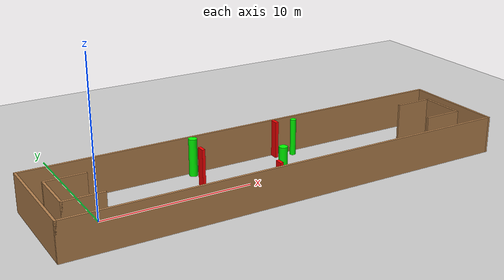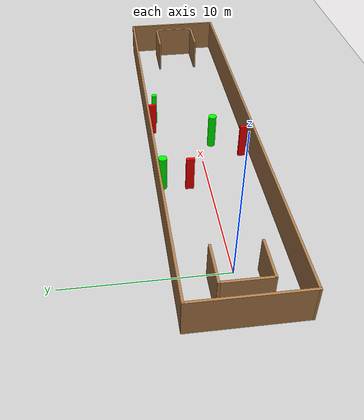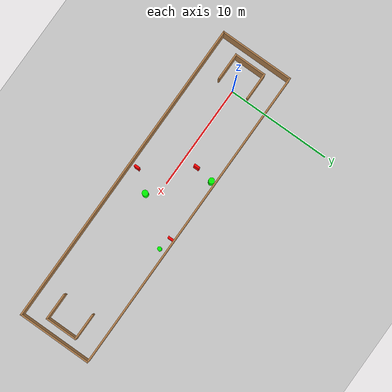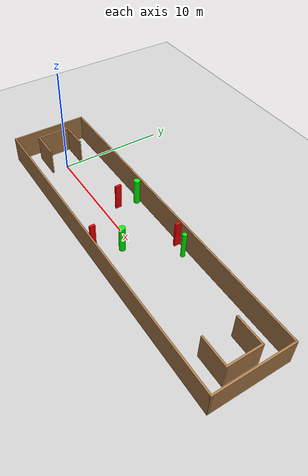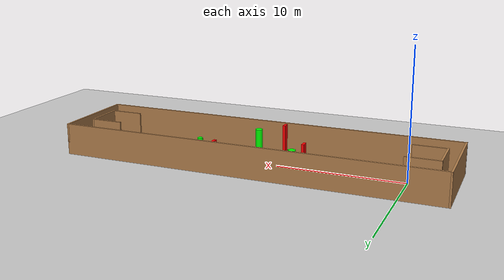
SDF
<sdf version="1.7">
 <world name="default">
  <light name="sun" type="directional">
   <pose>0 0 10 0 -0 0</pose>
   <diffuse>0.8 0.8 0.8 1</diffuse>
   <specular>0.2 0.2 0.2 1</specular>
   <attenuation>
    <range>1000</range>
    <constant>0.9</constant>
    <linear>0.01</linear>
    <quadratic>0.001</quadratic>
   </attenuation>
   <direction>-0.5 0.1 -0.9</direction>
   <spot><inner_angle>0</inner_angle><outer_angle>0</outer_angle><falloff>0</falloff></spot>
  </light>
  <model name="ground_plane">
   <static>1</static>
   <link name="link">
    <collision name="collision">
     <geometry><plane><normal>0 0 1</normal><size>100 100</size></plane></geometry>
     <surface>
      <contact><collide_bitmask>65535</collide_bitmask></contact>
      <friction><ode><mu>100</mu><mu2>50</mu2></ode></friction>
     </surface>
    </collision>
    <visual name="visual">
     <cast_shadows>0</cast_shadows>
     <geometry><plane><normal>0 0 1</normal><size>100 100</size></plane></geometry>
     <material>
      <script><uri>file://media/materials/scripts/gazebo.material</uri><name>Gazebo/Grey</name></script>
     </material>
    </visual>
   </link>
  </model>
  <gravity>0 0 -9.8</gravity>
  <magnetic_field>6e-06 2.3e-05 -4.2e-05</magnetic_field>
  <atmosphere type="adiabatic"/>
  <physics type="ode">
   <max_step_size>0.001</max_step_size>
   <real_time_factor>1</real_time_factor>
   <real_time_update_rate>1000</real_time_update_rate>
  </physics>
  <scene><ambient>0.4 0.4 0.4 1</ambient><background>0.7 0.7 0.7 1</background><shadows>1</shadows></scene>
  <spherical_coordinates>
   <surface_model>EARTH_WGS84</surface_model>
   <latitude_deg>0</latitude_deg>
   <longitude_deg>0</longitude_deg>
   <elevation>0</elevation>
   <heading_deg>0</heading_deg>
  </spherical_coordinates>
  <model name="my_base_walls">
   <link name="Wall_0">
    <collision name="Wall_0_Collision">
     <geometry><box><size>7.15 0.15 2.5</size></box></geometry>
     <pose>0 0 1.25 0 -0 0</pose>
    </collision>
    <visual name="Wall_0_Visual">
     <pose>0 0 1.25 0 -0 0</pose>
     <geometry><box><size>7.15 0.15 2.5</size></box></geometry>
     <material>
      <script><uri>file://media/materials/scripts/gazebo.material</uri><name>Gazebo/Wood</name></script>
      <ambient>1 1 1 1</ambient>
     </material>
     <meta><layer>0</layer></meta>
    </visual>
    <pose>-15 0 0 0 -0 1.5708</pose>
   </link>
   <link name="Wall_10">
    <collision name="Wall_10_Collision">
     <geometry><box><size>2.65 0.15 2.5</size></box></geometry>
     <pose>0 0 1.25 0 -0 0</pose>
    </collision>
    <visual name="Wall_10_Visual">
     <pose>0 0 1.25 0 -0 0</pose>
     <geometry><box><size>2.65 0.15 2.5</size></box></geometry>
     <material>
      <script><uri>file://media/materials/scripts/gazebo.material</uri><name>Gazebo/Wood</name></script>
      <ambient>1 1 1 1</ambient>
     </material>
     <meta><layer>0</layer></meta>
    </visual>
    <pose>-12.75 -1.5 0 0 -0 0</pose>
   </link>
   <link name="Wall_12">
    <collision name="Wall_12_Collision">
     <geometry><box><size>2.65 0.15 2.5</size></box></geometry>
     <pose>0 0 1.25 0 -0 0</pose>
    </collision>
    <visual name="Wall_12_Visual">
     <pose>0 0 1.25 0 -0 0</pose>
     <geometry><box><size>2.65 0.15 2.5</size></box></geometry>
     <material>
      <script><uri>file://media/materials/scripts/gazebo.material</uri><name>Gazebo/Wood</name></script>
      <ambient>1 1 1 1</ambient>
     </material>
     <meta><layer>0</layer></meta>
    </visual>
    <pose>-12.75 1.5 0 0 -0 0</pose>
   </link>
   <link name="Wall_14">
    <collision name="Wall_14_Collision">
     <geometry><box><size>3.15 0.15 2.5</size></box></geometry>
     <pose>0 0 1.25 0 -0 0</pose>
    </collision>
    <visual name="Wall_14_Visual">
     <pose>0 0 1.25 0 -0 0</pose>
     <geometry><box><size>3.15 0.15 2.5</size></box></geometry>
     <material>
      <script><uri>file://media/materials/scripts/gazebo.material</uri><name>Gazebo/Wood</name></script>
      <ambient>1 1 1 1</ambient>
     </material>
     <meta><layer>0</layer></meta>
    </visual>
    <pose>14 0 0 0 -0 -1.5708</pose>
   </link>
   <link name="Wall_15">
    <collision name="Wall_15_Collision">
     <geometry><box><size>2.65 0.15 2.5</size></box></geometry>
     <pose>0 0 1.25 0 -0 0</pose>
    </collision>
    <visual name="Wall_15_Visual">
     <pose>0 0 1.25 0 -0 0</pose>
     <geometry><box><size>2.65 0.15 2.5</size></box></geometry>
     <material>
      <script><uri>file://media/materials/scripts/gazebo.material</uri><name>Gazebo/Wood</name></script>
      <ambient>1 1 1 1</ambient>
     </material>
     <meta><layer>0</layer></meta>
    </visual>
    <pose>12.75 -1.5 0 0 -0 3.14159</pose>
   </link>
   <link name="Wall_17">
    <collision name="Wall_17_Collision">
     <geometry><box><size>2.65 0.15 2.5</size></box></geometry>
     <pose>0 0 1.25 0 -0 0</pose>
    </collision>
    <visual name="Wall_17_Visual">
     <pose>0 0 1.25 0 -0 0</pose>
     <geometry><box><size>2.65 0.15 2.5</size></box></geometry>
     <material>
      <script><uri>file://media/materials/scripts/gazebo.material</uri><name>Gazebo/Wood</name></script>
      <ambient>1 1 1 1</ambient>
     </material>
     <meta><layer>0</layer></meta>
    </visual>
    <pose>12.75 1.5 0 0 -0 3.14159</pose>
   </link>
   <link name="Wall_2">
    <collision name="Wall_2_Collision">
     <geometry><box><size>30.15 0.15 2.5</size></box></geometry>
     <pose>0 0 1.25 0 -0 0</pose>
    </collision>
    <visual name="Wall_2_Visual">
     <pose>0 0 1.25 0 -0 0</pose>
     <geometry><box><size>30.15 0.15 2.5</size></box></geometry>
     <material>
      <script><uri>file://media/materials/scripts/gazebo.material</uri><name>Gazebo/Wood</name></script>
      <ambient>1 1 1 1</ambient>
     </material>
     <meta><layer>0</layer></meta>
    </visual>
    <pose>-0 -3.5 0 0 -0 0</pose>
   </link>
   <link name="Wall_4">
    <collision name="Wall_4_Collision">
     <geometry><box><size>30.15 0.15 2.5</size></box></geometry>
     <pose>0 0 1.25 0 -0 0</pose>
    </collision>
    <visual name="Wall_4_Visual">
     <pose>0 0 1.25 0 -0 0</pose>
     <geometry><box><size>30.15 0.15 2.5</size></box></geometry>
     <material>
      <script><uri>file://media/materials/scripts/gazebo.material</uri><name>Gazebo/Wood</name></script>
      <ambient>1 1 1 1</ambient>
     </material>
     <meta><layer>0</layer></meta>
    </visual>
    <pose>-0 3.5 0 0 -0 0</pose>
   </link>
   <link name="Wall_6">
    <collision name="Wall_6_Collision">
     <geometry><box><size>7.15 0.15 2.5</size></box></geometry>
     <pose>0 0 1.25 0 -0 0</pose>
    </collision>
    <visual name="Wall_6_Visual">
     <pose>0 0 1.25 0 -0 0</pose>
     <geometry><box><size>7.15 0.15 2.5</size></box></geometry>
     <material>
      <script><uri>file://media/materials/scripts/gazebo.material</uri><name>Gazebo/Wood</name></script>
      <ambient>1 1 1 1</ambient>
     </material>
     <meta><layer>0</layer></meta>
    </visual>
    <pose>15 0 0 0 -0 -1.5708</pose>
   </link>
   <link name="Wall_9">
    <collision name="Wall_9_Collision">
     <geometry><box><size>3.15 0.15 2.5</size></box></geometry>
     <pose>0 0 1.25 0 -0 0</pose>
    </collision>
    <visual name="Wall_9_Visual">
     <pose>0 0 1.25 0 -0 0</pose>
     <geometry><box><size>3.15 0.15 2.5</size></box></geometry>
     <material>
      <script><uri>file://media/materials/scripts/gazebo.material</uri><name>Gazebo/Wood</name></script>
      <ambient>1 1 1 1</ambient>
     </material>
     <meta><layer>0</layer></meta>
    </visual>
    <pose>-14 0 0 0 -0 -1.5708</pose>
   </link>
   <static>1</static>
   <pose>11.5 0 0 0 -0 0</pose>
  </model>
  <model name="cylinder1">
   <static>1</static>
   <link name="link">
    <inertial>
     <mass>1</mass>
     <inertia><ixx>0.5</ixx><ixy>0</ixy><ixz>0</ixz><iyy>0.5</iyy><iyz>0</iyz><izz>1</izz></inertia>
    </inertial>
    <collision name="collision">
     <geometry><cylinder><radius>0.28046638212229735</radius><length>2.5</length></cylinder></geometry>
    </collision>
    <visual name="visual">
     <geometry><cylinder><radius>0.28046638212229735</radius><length>2.5</length></cylinder></geometry>
     <material>
      <ambient>0 1 0 1</ambient>
      <diffuse>0 1 0 1</diffuse>
      <specular>0.1 0.1 0.1 1</specular>
      <emissive>0 0 0 0</emissive>
     </material>
    </visual>
   </link>
   <pose>7.650367297171419 3.130589919116746 1.25 0 0 0</pose>
  </model>
  <model name="cylinder2">
   <static>1</static>
   <link name="link">
    <inertial>
     <mass>1</mass>
     <inertia><ixx>0.5</ixx><ixy>0</ixy><ixz>0</ixz><iyy>0.5</iyy><iyz>0</iyz><izz>1</izz></inertia>
    </inertial>
    <collision name="collision">
     <geometry><cylinder><radius>0.2795611335944125</radius><length>2.5</length></cylinder></geometry>
    </collision>
    <visual name="visual">
     <geometry><cylinder><radius>0.2795611335944125</radius><length>2.5</length></cylinder></geometry>
     <material>
      <ambient>0 1 0 1</ambient>
      <diffuse>0 1 0 1</diffuse>
      <specular>0.1 0.1 0.1 1</specular>
      <emissive>0 0 0 0</emissive>
     </material>
    </visual>
   </link>
   <pose>11.846278118406513 -0.9165812304703902 1.25 0 0 0</pose>
  </model>
  <model name="cylinder3">
   <static>1</static>
   <link name="link">
    <inertial>
     <mass>1</mass>
     <inertia><ixx>0.5</ixx><ixy>0</ixy><ixz>0</ixz><iyy>0.5</iyy><iyz>0</iyz><izz>1</izz></inertia>
    </inertial>
    <collision name="collision">
     <geometry><cylinder><radius>0.19528446278272846</radius><length>2.5</length></cylinder></geometry>
    </collision>
    <visual name="visual">
     <geometry><cylinder><radius>0.19528446278272846</radius><length>2.5</length></cylinder></geometry>
     <material>
      <ambient>0 1 0 1</ambient>
      <diffuse>0 1 0 1</diffuse>
      <specular>0.1 0.1 0.1 1</specular>
      <emissive>0 0 0 0</emissive>
     </material>
    </visual>
   </link>
   <pose>15.02096678763155 2.885499076180068 1.25 0 0 0</pose>
  </model>
  <model name="box1">
   <static>1</static>
   <link name="link">
    <inertial>
     <mass>1</mass>
     <inertia><ixx>0.083</ixx><ixy>0</ixy><ixz>0</ixz><iyy>0.083</iyy><iyz>0</iyz><izz>0.083</izz></inertia>
    </inertial>
    <collision name="collision">
     <geometry><box><size>0.21181712463042351 0.5441764796404168 2.5</size></box></geometry>
    </collision>
    <visual name="visual">
     <geometry><box><size>0.21181712463042351 0.5441764796404168 2.5</size></box></geometry>
     <material>
      <ambient>1 0 0 1</ambient>
      <diffuse>1 0 0 1</diffuse>
      <specular>0.1 0.1 0.1 1</specular>
      <emissive>0 0 0 0</emissive>
     </material>
    </visual>
    <sensor name="my_contact" type="contact">
     <contact><collision>box_collision</collision><topic>__default_topic__</topic></contact>
    </sensor>
   </link>
   <pose>13.760980936209513 3.1620358737053813 1.25 0 0 0</pose>
  </model>
  <model name="box2">
   <static>1</static>
   <link name="link">
    <inertial>
     <mass>1</mass>
     <inertia><ixx>0.083</ixx><ixy>0</ixy><ixz>0</ixz><iyy>0.083</iyy><iyz>0</iyz><izz>0.083</izz></inertia>
    </inertial>
    <collision name="collision">
     <geometry><box><size>0.20989599818036614 0.5491843482371743 2.5</size></box></geometry>
    </collision>
    <visual name="visual">
     <geometry><box><size>0.20989599818036614 0.5491843482371743 2.5</size></box></geometry>
     <material>
      <ambient>1 0 0 1</ambient>
      <diffuse>1 0 0 1</diffuse>
      <specular>0.1 0.1 0.1 1</specular>
      <emissive>0 0 0 0</emissive>
     </material>
    </visual>
    <sensor name="my_contact" type="contact">
     <contact><collision>box_collision</collision><topic>__default_topic__</topic></contact>
    </sensor>
   </link>
   <pose>7.376537436711345 1.3675508180063076 1.25 0 0 0</pose>
  </model>
  <model name="box3">
   <static>1</static>
   <link name="link">
    <inertial>
     <mass>1</mass>
     <inertia><ixx>0.083</ixx><ixy>0</ixy><ixz>0</ixz><iyy>0.083</iyy><iyz>0</iyz><izz>0.083</izz></inertia>
    </inertial>
    <collision name="collision">
     <geometry><box><size>0.20988342938854748 0.49395480058873187 2.5</size></box></geometry>
    </collision>
    <visual name="visual">
     <geometry><box><size>0.20988342938854748 0.49395480058873187 2.5</size></box></geometry>
     <material>
      <ambient>1 0 0 1</ambient>
      <diffuse>1 0 0 1</diffuse>
      <specular>0.1 0.1 0.1 1</specular>
      <emissive>0 0 0 0</emissive>
     </material>
    </visual>
    <sensor name="my_contact" type="contact">
     <contact><collision>box_collision</collision><topic>__default_topic__</topic></contact>
    </sensor>
   </link>
   <pose>10.399606082811879 -2.8221905254940283 1.25 0 0 0</pose>
  </model>
 </world>
</sdf>
